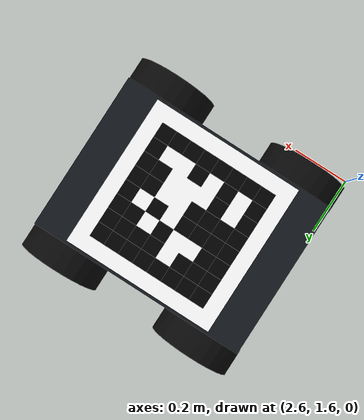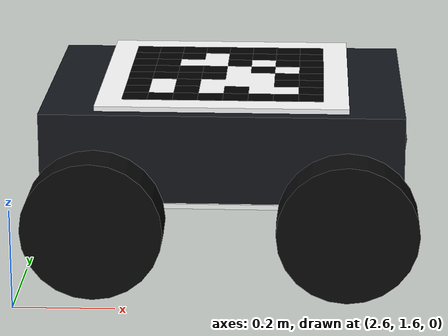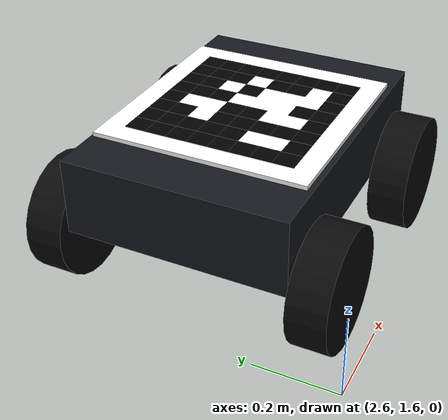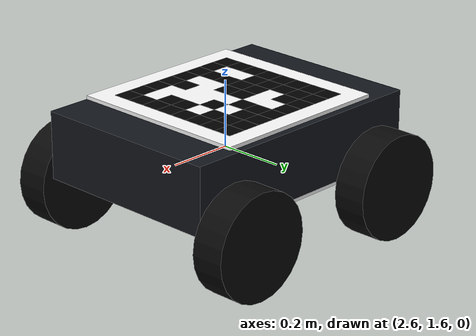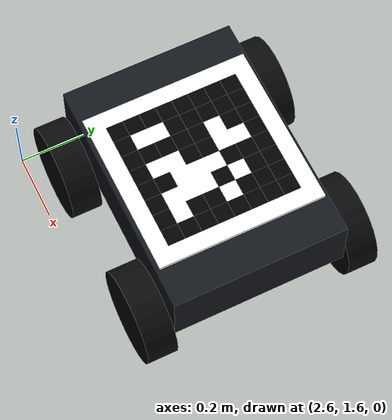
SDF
<sdf version="1.9">
 <world name="mocap_arena">
  <model name="tag_rover">
   <pose>3 2 0.14 0 0 0</pose>
   <link name="base_link">
    <inertial>
     <mass>8</mass>
     <inertia><ixx>0.22</ixx><iyy>0.22</iyy><izz>0.22</izz><ixy>0</ixy><ixz>0</ixz><iyz>0</iyz></inertia>
    </inertial>
    <collision name="body_collision">
     <pose>0 0 0.12 0 0 0</pose>
     <geometry><box><size>0.72 0.52 0.18</size></box></geometry>
    </collision>
    <visual name="body_visual">
     <pose>0 0 0.12 0 0 0</pose>
     <geometry><box><size>0.72 0.52 0.18</size></box></geometry>
     <material>
      <ambient>0.075 0.09 0.11 1</ambient>
      <diffuse>0.075 0.09 0.11 1</diffuse>
      <pbr><metal><metalness>0.2</metalness><roughness>0.7</roughness></metal></pbr>
     </material>
    </visual>
    <collision name="tag_board_collision">
     <pose>0 0 0.22 0 0 0</pose>
     <geometry><box><size>0.5 0.5 0.01</size></box></geometry>
    </collision>
    <visual name="tag_board_visual">
     <pose>0 0 0.22 0 0 0</pose>
     <geometry><box><size>0.5 0.5 0.01</size></box></geometry>
     <material>
      <ambient>1 1 1 1</ambient>
      <diffuse>1 1 1 1</diffuse>
      <pbr><metal><metalness>0.0</metalness><roughness>0.75</roughness></metal></pbr>
     </material>
    </visual>
    <collision name="bottom_tag_board_collision">
     <pose>0 0 0.02 0 0 0</pose>
     <geometry><box><size>0.5 0.5 0.01</size></box></geometry>
    </collision>
    <visual name="bottom_tag_board_visual">
     <pose>0 0 0.02 0 0 0</pose>
     <geometry><box><size>0.5 0.5 0.01</size></box></geometry>
     <material>
      <ambient>1 1 1 1</ambient>
      <diffuse>1 1 1 1</diffuse>
      <pbr><metal><metalness>0.0</metalness><roughness>0.75</roughness></metal></pbr>
     </material>
    </visual>
    <visual name="tag_0_1_1_visual">
     <pose>-0.17500000000000002 0.17500000000000002 0.2252 0 0 0</pose>
     <geometry><box><size>0.05 0.05 0.0004</size></box></geometry>
     <material>
      <ambient>0 0 0 1</ambient>
      <diffuse>0 0 0 1</diffuse>
      <pbr><metal><metalness>0.0</metalness><roughness>0.75</roughness></metal></pbr>
     </material>
    </visual>
    <visual name="tag_0_1_2_visual">
     <pose>-0.125 0.17500000000000002 0.2252 0 0 0</pose>
     <geometry><box><size>0.05 0.05 0.0004</size></box></geometry>
     <material>
      <ambient>0 0 0 1</ambient>
      <diffuse>0 0 0 1</diffuse>
      <pbr><metal><metalness>0.0</metalness><roughness>0.75</roughness></metal></pbr>
     </material>
    </visual>
    <visual name="tag_0_1_3_visual">
     <pose>-0.07500000000000001 0.17500000000000002 0.2252 0 0 0</pose>
     <geometry><box><size>0.05 0.05 0.0004</size></box></geometry>
     <material>
      <ambient>0 0 0 1</ambient>
      <diffuse>0 0 0 1</diffuse>
      <pbr><metal><metalness>0.0</metalness><roughness>0.75</roughness></metal></pbr>
     </material>
    </visual>
    <visual name="tag_0_1_4_visual">
     <pose>-0.025 0.17500000000000002 0.2252 0 0 0</pose>
     <geometry><box><size>0.05 0.05 0.0004</size></box></geometry>
     <material>
      <ambient>0 0 0 1</ambient>
      <diffuse>0 0 0 1</diffuse>
      <pbr><metal><metalness>0.0</metalness><roughness>0.75</roughness></metal></pbr>
     </material>
    </visual>
    <visual name="tag_0_1_5_visual">
     <pose>0.025 0.17500000000000002 0.2252 0 0 0</pose>
     <geometry><box><size>0.05 0.05 0.0004</size></box></geometry>
     <material>
      <ambient>0 0 0 1</ambient>
      <diffuse>0 0 0 1</diffuse>
      <pbr><metal><metalness>0.0</metalness><roughness>0.75</roughness></metal></pbr>
     </material>
    </visual>
    <visual name="tag_0_1_6_visual">
     <pose>0.07500000000000001 0.17500000000000002 0.2252 0 0 0</pose>
     <geometry><box><size>0.05 0.05 0.0004</size></box></geometry>
     <material>
      <ambient>0 0 0 1</ambient>
      <diffuse>0 0 0 1</diffuse>
      <pbr><metal><metalness>0.0</metalness><roughness>0.75</roughness></metal></pbr>
     </material>
    </visual>
    <visual name="tag_0_1_7_visual">
     <pose>0.125 0.17500000000000002 0.2252 0 0 0</pose>
     <geometry><box><size>0.05 0.05 0.0004</size></box></geometry>
     <material>
      <ambient>0 0 0 1</ambient>
      <diffuse>0 0 0 1</diffuse>
      <pbr><metal><metalness>0.0</metalness><roughness>0.75</roughness></metal></pbr>
     </material>
    </visual>
    <visual name="tag_0_1_8_visual">
     <pose>0.17500000000000002 0.17500000000000002 0.2252 0 0 0</pose>
     <geometry><box><size>0.05 0.05 0.0004</size></box></geometry>
     <material>
      <ambient>0 0 0 1</ambient>
      <diffuse>0 0 0 1</diffuse>
      <pbr><metal><metalness>0.0</metalness><roughness>0.75</roughness></metal></pbr>
     </material>
    </visual>
    <visual name="tag_0_2_1_visual">
     <pose>-0.17500000000000002 0.125 0.2252 0 0 0</pose>
     <geometry><box><size>0.05 0.05 0.0004</size></box></geometry>
     <material>
      <ambient>0 0 0 1</ambient>
      <diffuse>0 0 0 1</diffuse>
      <pbr><metal><metalness>0.0</metalness><roughness>0.75</roughness></metal></pbr>
     </material>
    </visual>
    <visual name="tag_0_2_2_visual">
     <pose>-0.125 0.125 0.2252 0 0 0</pose>
     <geometry><box><size>0.05 0.05 0.0004</size></box></geometry>
     <material>
      <ambient>0 0 0 1</ambient>
      <diffuse>0 0 0 1</diffuse>
      <pbr><metal><metalness>0.0</metalness><roughness>0.75</roughness></metal></pbr>
     </material>
    </visual>
    <visual name="tag_0_2_3_visual">
     <pose>-0.07500000000000001 0.125 0.2252 0 0 0</pose>
     <geometry><box><size>0.05 0.05 0.0004</size></box></geometry>
     <material>
      <ambient>0 0 0 1</ambient>
      <diffuse>0 0 0 1</diffuse>
      <pbr><metal><metalness>0.0</metalness><roughness>0.75</roughness></metal></pbr>
     </material>
    </visual>
    <visual name="tag_0_2_5_visual">
     <pose>0.025 0.125 0.2252 0 0 0</pose>
     <geometry><box><size>0.05 0.05 0.0004</size></box></geometry>
     <material>
      <ambient>0 0 0 1</ambient>
      <diffuse>0 0 0 1</diffuse>
      <pbr><metal><metalness>0.0</metalness><roughness>0.75</roughness></metal></pbr>
     </material>
    </visual>
    <visual name="tag_0_2_6_visual">
     <pose>0.07500000000000001 0.125 0.2252 0 0 0</pose>
     <geometry><box><size>0.05 0.05 0.0004</size></box></geometry>
     <material>
      <ambient>0 0 0 1</ambient>
      <diffuse>0 0 0 1</diffuse>
      <pbr><metal><metalness>0.0</metalness><roughness>0.75</roughness></metal></pbr>
     </material>
    </visual>
    <visual name="tag_0_2_7_visual">
     <pose>0.125 0.125 0.2252 0 0 0</pose>
     <geometry><box><size>0.05 0.05 0.0004</size></box></geometry>
     <material>
      <ambient>0 0 0 1</ambient>
      <diffuse>0 0 0 1</diffuse>
      <pbr><metal><metalness>0.0</metalness><roughness>0.75</roughness></metal></pbr>
     </material>
    </visual>
    <visual name="tag_0_2_8_visual">
     <pose>0.17500000000000002 0.125 0.2252 0 0 0</pose>
     <geometry><box><size>0.05 0.05 0.0004</size></box></geometry>
     <material>
      <ambient>0 0 0 1</ambient>
      <diffuse>0 0 0 1</diffuse>
      <pbr><metal><metalness>0.0</metalness><roughness>0.75</roughness></metal></pbr>
     </material>
    </visual>
    <visual name="tag_0_3_1_visual">
     <pose>-0.17500000000000002 0.07500000000000001 0.2252 0 0 0</pose>
     <geometry><box><size>0.05 0.05 0.0004</size></box></geometry>
     <material>
      <ambient>0 0 0 1</ambient>
      <diffuse>0 0 0 1</diffuse>
      <pbr><metal><metalness>0.0</metalness><roughness>0.75</roughness></metal></pbr>
     </material>
    </visual>
    <visual name="tag_0_3_2_visual">
     <pose>-0.125 0.07500000000000001 0.2252 0 0 0</pose>
     <geometry><box><size>0.05 0.05 0.0004</size></box></geometry>
     <material>
      <ambient>0 0 0 1</ambient>
      <diffuse>0 0 0 1</diffuse>
      <pbr><metal><metalness>0.0</metalness><roughness>0.75</roughness></metal></pbr>
     </material>
    </visual>
    <visual name="tag_0_3_5_visual">
     <pose>0.025 0.07500000000000001 0.2252 0 0 0</pose>
     <geometry><box><size>0.05 0.05 0.0004</size></box></geometry>
     <material>
      <ambient>0 0 0 1</ambient>
      <diffuse>0 0 0 1</diffuse>
      <pbr><metal><metalness>0.0</metalness><roughness>0.75</roughness></metal></pbr>
     </material>
    </visual>
    <visual name="tag_0_3_7_visual">
     <pose>0.125 0.07500000000000001 0.2252 0 0 0</pose>
     <geometry><box><size>0.05 0.05 0.0004</size></box></geometry>
     <material>
      <ambient>0 0 0 1</ambient>
      <diffuse>0 0 0 1</diffuse>
      <pbr><metal><metalness>0.0</metalness><roughness>0.75</roughness></metal></pbr>
     </material>
    </visual>
    <visual name="tag_0_3_8_visual">
     <pose>0.17500000000000002 0.07500000000000001 0.2252 0 0 0</pose>
     <geometry><box><size>0.05 0.05 0.0004</size></box></geometry>
     <material>
      <ambient>0 0 0 1</ambient>
      <diffuse>0 0 0 1</diffuse>
      <pbr><metal><metalness>0.0</metalness><roughness>0.75</roughness></metal></pbr>
     </material>
    </visual>
    <visual name="tag_0_4_1_visual">
     <pose>-0.17500000000000002 0.025 0.2252 0 0 0</pose>
     <geometry><box><size>0.05 0.05 0.0004</size></box></geometry>
     <material>
      <ambient>0 0 0 1</ambient>
      <diffuse>0 0 0 1</diffuse>
      <pbr><metal><metalness>0.0</metalness><roughness>0.75</roughness></metal></pbr>
     </material>
    </visual>
    <visual name="tag_0_4_2_visual">
     <pose>-0.125 0.025 0.2252 0 0 0</pose>
     <geometry><box><size>0.05 0.05 0.0004</size></box></geometry>
     <material>
      <ambient>0 0 0 1</ambient>
      <diffuse>0 0 0 1</diffuse>
      <pbr><metal><metalness>0.0</metalness><roughness>0.75</roughness></metal></pbr>
     </material>
    </visual>
    <visual name="tag_0_4_3_visual">
     <pose>-0.07500000000000001 0.025 0.2252 0 0 0</pose>
     <geometry><box><size>0.05 0.05 0.0004</size></box></geometry>
     <material>
      <ambient>0 0 0 1</ambient>
      <diffuse>0 0 0 1</diffuse>
      <pbr><metal><metalness>0.0</metalness><roughness>0.75</roughness></metal></pbr>
     </material>
    </visual>
    <visual name="tag_0_4_4_visual">
     <pose>-0.025 0.025 0.2252 0 0 0</pose>
     <geometry><box><size>0.05 0.05 0.0004</size></box></geometry>
     <material>
      <ambient>0 0 0 1</ambient>
      <diffuse>0 0 0 1</diffuse>
      <pbr><metal><metalness>0.0</metalness><roughness>0.75</roughness></metal></pbr>
     </material>
    </visual>
    <visual name="tag_0_4_6_visual">
     <pose>0.07500000000000001 0.025 0.2252 0 0 0</pose>
     <geometry><box><size>0.05 0.05 0.0004</size></box></geometry>
     <material>
      <ambient>0 0 0 1</ambient>
      <diffuse>0 0 0 1</diffuse>
      <pbr><metal><metalness>0.0</metalness><roughness>0.75</roughness></metal></pbr>
     </material>
    </visual>
    <visual name="tag_0_4_8_visual">
     <pose>0.17500000000000002 0.025 0.2252 0 0 0</pose>
     <geometry><box><size>0.05 0.05 0.0004</size></box></geometry>
     <material>
      <ambient>0 0 0 1</ambient>
      <diffuse>0 0 0 1</diffuse>
      <pbr><metal><metalness>0.0</metalness><roughness>0.75</roughness></metal></pbr>
     </material>
    </visual>
    <visual name="tag_0_5_1_visual">
     <pose>-0.17500000000000002 -0.025 0.2252 0 0 0</pose>
     <geometry><box><size>0.05 0.05 0.0004</size></box></geometry>
     <material>
      <ambient>0 0 0 1</ambient>
      <diffuse>0 0 0 1</diffuse>
      <pbr><metal><metalness>0.0</metalness><roughness>0.75</roughness></metal></pbr>
     </material>
    </visual>
    <visual name="tag_0_5_2_visual">
     <pose>-0.125 -0.025 0.2252 0 0 0</pose>
     <geometry><box><size>0.05 0.05 0.0004</size></box></geometry>
     <material>
      <ambient>0 0 0 1</ambient>
      <diffuse>0 0 0 1</diffuse>
      <pbr><metal><metalness>0.0</metalness><roughness>0.75</roughness></metal></pbr>
     </material>
    </visual>
    <visual name="tag_0_5_3_visual">
     <pose>-0.07500000000000001 -0.025 0.2252 0 0 0</pose>
     <geometry><box><size>0.05 0.05 0.0004</size></box></geometry>
     <material>
      <ambient>0 0 0 1</ambient>
      <diffuse>0 0 0 1</diffuse>
      <pbr><metal><metalness>0.0</metalness><roughness>0.75</roughness></metal></pbr>
     </material>
    </visual>
    <visual name="tag_0_5_4_visual">
     <pose>-0.025 -0.025 0.2252 0 0 0</pose>
     <geometry><box><size>0.05 0.05 0.0004</size></box></geometry>
     <material>
      <ambient>0 0 0 1</ambient>
      <diffuse>0 0 0 1</diffuse>
      <pbr><metal><metalness>0.0</metalness><roughness>0.75</roughness></metal></pbr>
     </material>
    </visual>
    <visual name="tag_0_5_7_visual">
     <pose>0.125 -0.025 0.2252 0 0 0</pose>
     <geometry><box><size>0.05 0.05 0.0004</size></box></geometry>
     <material>
      <ambient>0 0 0 1</ambient>
      <diffuse>0 0 0 1</diffuse>
      <pbr><metal><metalness>0.0</metalness><roughness>0.75</roughness></metal></pbr>
     </material>
    </visual>
    <visual name="tag_0_5_8_visual">
     <pose>0.17500000000000002 -0.025 0.2252 0 0 0</pose>
     <geometry><box><size>0.05 0.05 0.0004</size></box></geometry>
     <material>
      <ambient>0 0 0 1</ambient>
      <diffuse>0 0 0 1</diffuse>
      <pbr><metal><metalness>0.0</metalness><roughness>0.75</roughness></metal></pbr>
     </material>
    </visual>
    <visual name="tag_0_6_1_visual">
     <pose>-0.17500000000000002 -0.07500000000000001 0.2252 0 0 0</pose>
     <geometry><box><size>0.05 0.05 0.0004</size></box></geometry>
     <material>
      <ambient>0 0 0 1</ambient>
      <diffuse>0 0 0 1</diffuse>
      <pbr><metal><metalness>0.0</metalness><roughness>0.75</roughness></metal></pbr>
     </material>
    </visual>
    <visual name="tag_0_6_3_visual">
     <pose>-0.07500000000000001 -0.07500000000000001 0.2252 0 0 0</pose>
     <geometry><box><size>0.05 0.05 0.0004</size></box></geometry>
     <material>
      <ambient>0 0 0 1</ambient>
      <diffuse>0 0 0 1</diffuse>
      <pbr><metal><metalness>0.0</metalness><roughness>0.75</roughness></metal></pbr>
     </material>
    </visual>
    <visual name="tag_0_6_7_visual">
     <pose>0.125 -0.07500000000000001 0.2252 0 0 0</pose>
     <geometry><box><size>0.05 0.05 0.0004</size></box></geometry>
     <material>
      <ambient>0 0 0 1</ambient>
      <diffuse>0 0 0 1</diffuse>
      <pbr><metal><metalness>0.0</metalness><roughness>0.75</roughness></metal></pbr>
     </material>
    </visual>
    <visual name="tag_0_6_8_visual">
     <pose>0.17500000000000002 -0.07500000000000001 0.2252 0 0 0</pose>
     <geometry><box><size>0.05 0.05 0.0004</size></box></geometry>
     <material>
      <ambient>0 0 0 1</ambient>
      <diffuse>0 0 0 1</diffuse>
      <pbr><metal><metalness>0.0</metalness><roughness>0.75</roughness></metal></pbr>
     </material>
    </visual>
    <visual name="tag_0_7_1_visual">
     <pose>-0.17500000000000002 -0.125 0.2252 0 0 0</pose>
     <geometry><box><size>0.05 0.05 0.0004</size></box></geometry>
     <material>
      <ambient>0 0 0 1</ambient>
      <diffuse>0 0 0 1</diffuse>
      <pbr><metal><metalness>0.0</metalness><roughness>0.75</roughness></metal></pbr>
     </material>
    </visual>
    <visual name="tag_0_7_3_visual">
     <pose>-0.07500000000000001 -0.125 0.2252 0 0 0</pose>
     <geometry><box><size>0.05 0.05 0.0004</size></box></geometry>
     <material>
      <ambient>0 0 0 1</ambient>
      <diffuse>0 0 0 1</diffuse>
      <pbr><metal><metalness>0.0</metalness><roughness>0.75</roughness></metal></pbr>
     </material>
    </visual>
    <visual name="tag_0_7_5_visual">
     <pose>0.025 -0.125 0.2252 0 0 0</pose>
     <geometry><box><size>0.05 0.05 0.0004</size></box></geometry>
     <material>
      <ambient>0 0 0 1</ambient>
      <diffuse>0 0 0 1</diffuse>
      <pbr><metal><metalness>0.0</metalness><roughness>0.75</roughness></metal></pbr>
     </material>
    </visual>
    <visual name="tag_0_7_8_visual">
     <pose>0.17500000000000002 -0.125 0.2252 0 0 0</pose>
     <geometry><box><size>0.05 0.05 0.0004</size></box></geometry>
     <material>
      <ambient>0 0 0 1</ambient>
      <diffuse>0 0 0 1</diffuse>
      <pbr><metal><metalness>0.0</metalness><roughness>0.75</roughness></metal></pbr>
     </material>
    </visual>
    <visual name="tag_0_8_1_visual">
     <pose>-0.17500000000000002 -0.17500000000000002 0.2252 0 0 0</pose>
     <geometry><box><size>0.05 0.05 0.0004</size></box></geometry>
     <material>
      <ambient>0 0 0 1</ambient>
      <diffuse>0 0 0 1</diffuse>
      <pbr><metal><metalness>0.0</metalness><roughness>0.75</roughness></metal></pbr>
     </material>
    </visual>
    <visual name="tag_0_8_2_visual">
     <pose>-0.125 -0.17500000000000002 0.2252 0 0 0</pose>
     <geometry><box><size>0.05 0.05 0.0004</size></box></geometry>
     <material>
      <ambient>0 0 0 1</ambient>
      <diffuse>0 0 0 1</diffuse>
      <pbr><metal><metalness>0.0</metalness><roughness>0.75</roughness></metal></pbr>
     </material>
    </visual>
    <visual name="tag_0_8_3_visual">
     <pose>-0.07500000000000001 -0.17500000000000002 0.2252 0 0 0</pose>
     <geometry><box><size>0.05 0.05 0.0004</size></box></geometry>
     <material>
      <ambient>0 0 0 1</ambient>
      <diffuse>0 0 0 1</diffuse>
      <pbr><metal><metalness>0.0</metalness><roughness>0.75</roughness></metal></pbr>
     </material>
    </visual>
    <visual name="tag_0_8_4_visual">
     <pose>-0.025 -0.17500000000000002 0.2252 0 0 0</pose>
     <geometry><box><size>0.05 0.05 0.0004</size></box></geometry>
     <material>
      <ambient>0 0 0 1</ambient>
      <diffuse>0 0 0 1</diffuse>
      <pbr><metal><metalness>0.0</metalness><roughness>0.75</roughness></metal></pbr>
     </material>
    </visual>
    <visual name="tag_0_8_5_visual">
     <pose>0.025 -0.17500000000000002 0.2252 0 0 0</pose>
     <geometry><box><size>0.05 0.05 0.0004</size></box></geometry>
     <material>
      <ambient>0 0 0 1</ambient>
      <diffuse>0 0 0 1</diffuse>
      <pbr><metal><metalness>0.0</metalness><roughness>0.75</roughness></metal></pbr>
     </material>
    </visual>
    <visual name="tag_0_8_6_visual">
     <pose>0.07500000000000001 -0.17500000000000002 0.2252 0 0 0</pose>
     <geometry><box><size>0.05 0.05 0.0004</size></box></geometry>
     <material>
      <ambient>0 0 0 1</ambient>
      <diffuse>0 0 0 1</diffuse>
      <pbr><metal><metalness>0.0</metalness><roughness>0.75</roughness></metal></pbr>
     </material>
    </visual>
    <visual name="tag_0_8_7_visual">
     <pose>0.125 -0.17500000000000002 0.2252 0 0 0</pose>
     <geometry><box><size>0.05 0.05 0.0004</size></box></geometry>
     <material>
      <ambient>0 0 0 1</ambient>
      <diffuse>0 0 0 1</diffuse>
      <pbr><metal><metalness>0.0</metalness><roughness>0.75</roughness></metal></pbr>
     </material>
    </visual>
    <visual name="tag_0_8_8_visual">
     <pose>0.17500000000000002 -0.17500000000000002 0.2252 0 0 0</pose>
     <geometry><box><size>0.05 0.05 0.0004</size></box></geometry>
     <material>
      <ambient>0 0 0 1</ambient>
      <diffuse>0 0 0 1</diffuse>
      <pbr><metal><metalness>0.0</metalness><roughness>0.75</roughness></metal></pbr>
     </material>
    </visual>
    <visual name="tag_1_1_1_visual">
     <pose>-0.17500000000000002 -0.17500000000000002 0.0148 0 0 0</pose>
     <geometry><box><size>0.05 0.05 0.0004</size></box></geometry>
     <material>
      <ambient>0 0 0 1</ambient>
      <diffuse>0 0 0 1</diffuse>
      <pbr><metal><metalness>0.0</metalness><roughness>0.75</roughness></metal></pbr>
     </material>
    </visual>
    <visual name="tag_1_1_2_visual">
     <pose>-0.125 -0.17500000000000002 0.0148 0 0 0</pose>
     <geometry><box><size>0.05 0.05 0.0004</size></box></geometry>
     <material>
      <ambient>0 0 0 1</ambient>
      <diffuse>0 0 0 1</diffuse>
      <pbr><metal><metalness>0.0</metalness><roughness>0.75</roughness></metal></pbr>
     </material>
    </visual>
    <visual name="tag_1_1_3_visual">
     <pose>-0.07500000000000001 -0.17500000000000002 0.0148 0 0 0</pose>
     <geometry><box><size>0.05 0.05 0.0004</size></box></geometry>
     <material>
      <ambient>0 0 0 1</ambient>
      <diffuse>0 0 0 1</diffuse>
      <pbr><metal><metalness>0.0</metalness><roughness>0.75</roughness></metal></pbr>
     </material>
    </visual>
    <visual name="tag_1_1_4_visual">
     <pose>-0.025 -0.17500000000000002 0.0148 0 0 0</pose>
     <geometry><box><size>0.05 0.05 0.0004</size></box></geometry>
     <material>
      <ambient>0 0 0 1</ambient>
      <diffuse>0 0 0 1</diffuse>
      <pbr><metal><metalness>0.0</metalness><roughness>0.75</roughness></metal></pbr>
     </material>
    </visual>
    <visual name="tag_1_1_5_visual">
     <pose>0.025 -0.17500000000000002 0.0148 0 0 0</pose>
     <geometry><box><size>0.05 0.05 0.0004</size></box></geometry>
     <material>
      <ambient>0 0 0 1</ambient>
      <diffuse>0 0 0 1</diffuse>
      <pbr><metal><metalness>0.0</metalness><roughness>0.75</roughness></metal></pbr>
     </material>
    </visual>
    <visual name="tag_1_1_6_visual">
     <pose>0.07500000000000001 -0.17500000000000002 0.0148 0 0 0</pose>
     <geometry><box><size>0.05 0.05 0.0004</size></box></geometry>
     <material>
      <ambient>0 0 0 1</ambient>
      <diffuse>0 0 0 1</diffuse>
      <pbr><metal><metalness>0.0</metalness><roughness>0.75</roughness></metal></pbr>
     </material>
    </visual>
    <visual name="tag_1_1_7_visual">
     <pose>0.125 -0.17500000000000002 0.0148 0 0 0</pose>
     <geometry><box><size>0.05 0.05 0.0004</size></box></geometry>
     <material>
      <ambient>0 0 0 1</ambient>
      <diffuse>0 0 0 1</diffuse>
      <pbr><metal><metalness>0.0</metalness><roughness>0.75</roughness></metal></pbr>
     </material>
    </visual>
    <visual name="tag_1_1_8_visual">
     <pose>0.17500000000000002 -0.17500000000000002 0.0148 0 0 0</pose>
     <geometry><box><size>0.05 0.05 0.0004</size></box></geometry>
     <material>
      <ambient>0 0 0 1</ambient>
      <diffuse>0 0 0 1</diffuse>
      <pbr><metal><metalness>0.0</metalness><roughness>0.75</roughness></metal></pbr>
     </material>
    </visual>
    <visual name="tag_1_2_1_visual">
     <pose>-0.17500000000000002 -0.125 0.0148 0 0 0</pose>
     <geometry><box><size>0.05 0.05 0.0004</size></box></geometry>
     <material>
      <ambient>0 0 0 1</ambient>
      <diffuse>0 0 0 1</diffuse>
      <pbr><metal><metalness>0.0</metalness><roughness>0.75</roughness></metal></pbr>
     </material>
    </visual>
    <visual name="tag_1_2_3_visual">
     <pose>-0.07500000000000001 -0.125 0.0148 0 0 0</pose>
     <geometry><box><size>0.05 0.05 0.0004</size></box></geometry>
     <material>
      <ambient>0 0 0 1</ambient>
      <diffuse>0 0 0 1</diffuse>
      <pbr><metal><metalness>0.0</metalness><roughness>0.75</roughness></metal></pbr>
     </material>
    </visual>
    <visual name="tag_1_2_4_visual">
     <pose>-0.025 -0.125 0.0148 0 0 0</pose>
     <geometry><box><size>0.05 0.05 0.0004</size></box></geometry>
     <material>
      <ambient>0 0 0 1</ambient>
      <diffuse>0 0 0 1</diffuse>
      <pbr><metal><metalness>0.0</metalness><roughness>0.75</roughness></metal></pbr>
     </material>
    </visual>
    <visual name="tag_1_2_6_visual">
     <pose>0.07500000000000001 -0.125 0.0148 0 0 0</pose>
     <geometry><box><size>0.05 0.05 0.0004</size></box></geometry>
     <material>
      <ambient>0 0 0 1</ambient>
      <diffuse>0 0 0 1</diffuse>
      <pbr><metal><metalness>0.0</metalness><roughness>0.75</roughness></metal></pbr>
     </material>
    </visual>
    <visual name="tag_1_2_7_visual">
     <pose>0.125 -0.125 0.0148 0 0 0</pose>
     <geometry><box><size>0.05 0.05 0.0004</size></box></geometry>
     <material>
      <ambient>0 0 0 1</ambient>
      <diffuse>0 0 0 1</diffuse>
      <pbr><metal><metalness>0.0</metalness><roughness>0.75</roughness></metal></pbr>
     </material>
    </visual>
    <visual name="tag_1_2_8_visual">
     <pose>0.17500000000000002 -0.125 0.0148 0 0 0</pose>
     <geometry><box><size>0.05 0.05 0.0004</size></box></geometry>
     <material>
      <ambient>0 0 0 1</ambient>
      <diffuse>0 0 0 1</diffuse>
      <pbr><metal><metalness>0.0</metalness><roughness>0.75</roughness></metal></pbr>
     </material>
    </visual>
    <visual name="tag_1_3_1_visual">
     <pose>-0.17500000000000002 -0.07500000000000001 0.0148 0 0 0</pose>
     <geometry><box><size>0.05 0.05 0.0004</size></box></geometry>
     <material>
      <ambient>0 0 0 1</ambient>
      <diffuse>0 0 0 1</diffuse>
      <pbr><metal><metalness>0.0</metalness><roughness>0.75</roughness></metal></pbr>
     </material>
    </visual>
    <visual name="tag_1_3_3_visual">
     <pose>-0.07500000000000001 -0.07500000000000001 0.0148 0 0 0</pose>
     <geometry><box><size>0.05 0.05 0.0004</size></box></geometry>
     <material>
      <ambient>0 0 0 1</ambient>
      <diffuse>0 0 0 1</diffuse>
      <pbr><metal><metalness>0.0</metalness><roughness>0.75</roughness></metal></pbr>
     </material>
    </visual>
    <visual name="tag_1_3_6_visual">
     <pose>0.07500000000000001 -0.07500000000000001 0.0148 0 0 0</pose>
     <geometry><box><size>0.05 0.05 0.0004</size></box></geometry>
     <material>
      <ambient>0 0 0 1</ambient>
      <diffuse>0 0 0 1</diffuse>
      <pbr><metal><metalness>0.0</metalness><roughness>0.75</roughness></metal></pbr>
     </material>
    </visual>
    <visual name="tag_1_3_8_visual">
     <pose>0.17500000000000002 -0.07500000000000001 0.0148 0 0 0</pose>
     <geometry><box><size>0.05 0.05 0.0004</size></box></geometry>
     <material>
      <ambient>0 0 0 1</ambient>
      <diffuse>0 0 0 1</diffuse>
      <pbr><metal><metalness>0.0</metalness><roughness>0.75</roughness></metal></pbr>
     </material>
    </visual>
    <visual name="tag_1_4_1_visual">
     <pose>-0.17500000000000002 -0.025 0.0148 0 0 0</pose>
     <geometry><box><size>0.05 0.05 0.0004</size></box></geometry>
     <material>
      <ambient>0 0 0 1</ambient>
      <diffuse>0 0 0 1</diffuse>
      <pbr><metal><metalness>0.0</metalness><roughness>0.75</roughness></metal></pbr>
     </material>
    </visual>
    <visual name="tag_1_4_2_visual">
     <pose>-0.125 -0.025 0.0148 0 0 0</pose>
     <geometry><box><size>0.05 0.05 0.0004</size></box></geometry>
     <material>
      <ambient>0 0 0 1</ambient>
      <diffuse>0 0 0 1</diffuse>
      <pbr><metal><metalness>0.0</metalness><roughness>0.75</roughness></metal></pbr>
     </material>
    </visual>
    <visual name="tag_1_4_3_visual">
     <pose>-0.07500000000000001 -0.025 0.0148 0 0 0</pose>
     <geometry><box><size>0.05 0.05 0.0004</size></box></geometry>
     <material>
      <ambient>0 0 0 1</ambient>
      <diffuse>0 0 0 1</diffuse>
      <pbr><metal><metalness>0.0</metalness><roughness>0.75</roughness></metal></pbr>
     </material>
    </visual>
    <visual name="tag_1_4_4_visual">
     <pose>-0.025 -0.025 0.0148 0 0 0</pose>
     <geometry><box><size>0.05 0.05 0.0004</size></box></geometry>
     <material>
      <ambient>0 0 0 1</ambient>
      <diffuse>0 0 0 1</diffuse>
      <pbr><metal><metalness>0.0</metalness><roughness>0.75</roughness></metal></pbr>
     </material>
    </visual>
    <visual name="tag_1_4_7_visual">
     <pose>0.125 -0.025 0.0148 0 0 0</pose>
     <geometry><box><size>0.05 0.05 0.0004</size></box></geometry>
     <material>
      <ambient>0 0 0 1</ambient>
      <diffuse>0 0 0 1</diffuse>
      <pbr><metal><metalness>0.0</metalness><roughness>0.75</roughness></metal></pbr>
     </material>
    </visual>
    <visual name="tag_1_4_8_visual">
     <pose>0.17500000000000002 -0.025 0.0148 0 0 0</pose>
     <geometry><box><size>0.05 0.05 0.0004</size></box></geometry>
     <material>
      <ambient>0 0 0 1</ambient>
      <diffuse>0 0 0 1</diffuse>
      <pbr><metal><metalness>0.0</metalness><roughness>0.75</roughness></metal></pbr>
     </material>
    </visual>
    <visual name="tag_1_5_1_visual">
     <pose>-0.17500000000000002 0.025 0.0148 0 0 0</pose>
     <geometry><box><size>0.05 0.05 0.0004</size></box></geometry>
     <material>
      <ambient>0 0 0 1</ambient>
      <diffuse>0 0 0 1</diffuse>
      <pbr><metal><metalness>0.0</metalness><roughness>0.75</roughness></metal></pbr>
     </material>
    </visual>
    <visual name="tag_1_5_2_visual">
     <pose>-0.125 0.025 0.0148 0 0 0</pose>
     <geometry><box><size>0.05 0.05 0.0004</size></box></geometry>
     <material>
      <ambient>0 0 0 1</ambient>
      <diffuse>0 0 0 1</diffuse>
      <pbr><metal><metalness>0.0</metalness><roughness>0.75</roughness></metal></pbr>
     </material>
    </visual>
    <visual name="tag_1_5_3_visual">
     <pose>-0.07500000000000001 0.025 0.0148 0 0 0</pose>
     <geometry><box><size>0.05 0.05 0.0004</size></box></geometry>
     <material>
      <ambient>0 0 0 1</ambient>
      <diffuse>0 0 0 1</diffuse>
      <pbr><metal><metalness>0.0</metalness><roughness>0.75</roughness></metal></pbr>
     </material>
    </visual>
    <visual name="tag_1_5_8_visual">
     <pose>0.17500000000000002 0.025 0.0148 0 0 0</pose>
     <geometry><box><size>0.05 0.05 0.0004</size></box></geometry>
     <material>
      <ambient>0 0 0 1</ambient>
      <diffuse>0 0 0 1</diffuse>
      <pbr><metal><metalness>0.0</metalness><roughness>0.75</roughness></metal></pbr>
     </material>
    </visual>
    <visual name="tag_1_6_1_visual">
     <pose>-0.17500000000000002 0.07500000000000001 0.0148 0 0 0</pose>
     <geometry><box><size>0.05 0.05 0.0004</size></box></geometry>
     <material>
      <ambient>0 0 0 1</ambient>
      <diffuse>0 0 0 1</diffuse>
      <pbr><metal><metalness>0.0</metalness><roughness>0.75</roughness></metal></pbr>
     </material>
    </visual>
    <visual name="tag_1_6_5_visual">
     <pose>0.025 0.07500000000000001 0.0148 0 0 0</pose>
     <geometry><box><size>0.05 0.05 0.0004</size></box></geometry>
     <material>
      <ambient>0 0 0 1</ambient>
      <diffuse>0 0 0 1</diffuse>
      <pbr><metal><metalness>0.0</metalness><roughness>0.75</roughness></metal></pbr>
     </material>
    </visual>
    <visual name="tag_1_6_7_visual">
     <pose>0.125 0.07500000000000001 0.0148 0 0 0</pose>
     <geometry><box><size>0.05 0.05 0.0004</size></box></geometry>
     <material>
      <ambient>0 0 0 1</ambient>
      <diffuse>0 0 0 1</diffuse>
      <pbr><metal><metalness>0.0</metalness><roughness>0.75</roughness></metal></pbr>
     </material>
    </visual>
    <visual name="tag_1_6_8_visual">
     <pose>0.17500000000000002 0.07500000000000001 0.0148 0 0 0</pose>
     <geometry><box><size>0.05 0.05 0.0004</size></box></geometry>
     <material>
      <ambient>0 0 0 1</ambient>
      <diffuse>0 0 0 1</diffuse>
      <pbr><metal><metalness>0.0</metalness><roughness>0.75</roughness></metal></pbr>
     </material>
    </visual>
    <visual name="tag_1_7_1_visual">
     <pose>-0.17500000000000002 0.125 0.0148 0 0 0</pose>
     <geometry><box><size>0.05 0.05 0.0004</size></box></geometry>
     <material>
      <ambient>0 0 0 1</ambient>
      <diffuse>0 0 0 1</diffuse>
      <pbr><metal><metalness>0.0</metalness><roughness>0.75</roughness></metal></pbr>
     </material>
    </visual>
    <visual name="tag_1_7_2_visual">
     <pose>-0.125 0.125 0.0148 0 0 0</pose>
     <geometry><box><size>0.05 0.05 0.0004</size></box></geometry>
     <material>
      <ambient>0 0 0 1</ambient>
      <diffuse>0 0 0 1</diffuse>
      <pbr><metal><metalness>0.0</metalness><roughness>0.75</roughness></metal></pbr>
     </material>
    </visual>
    <visual name="tag_1_7_5_visual">
     <pose>0.025 0.125 0.0148 0 0 0</pose>
     <geometry><box><size>0.05 0.05 0.0004</size></box></geometry>
     <material>
      <ambient>0 0 0 1</ambient>
      <diffuse>0 0 0 1</diffuse>
      <pbr><metal><metalness>0.0</metalness><roughness>0.75</roughness></metal></pbr>
     </material>
    </visual>
    <visual name="tag_1_7_8_visual">
     <pose>0.17500000000000002 0.125 0.0148 0 0 0</pose>
     <geometry><box><size>0.05 0.05 0.0004</size></box></geometry>
     <material>
      <ambient>0 0 0 1</ambient>
      <diffuse>0 0 0 1</diffuse>
      <pbr><metal><metalness>0.0</metalness><roughness>0.75</roughness></metal></pbr>
     </material>
    </visual>
    <visual name="tag_1_8_1_visual">
     <pose>-0.17500000000000002 0.17500000000000002 0.0148 0 0 0</pose>
     <geometry><box><size>0.05 0.05 0.0004</size></box></geometry>
     <material>
      <ambient>0 0 0 1</ambient>
      <diffuse>0 0 0 1</diffuse>
      <pbr><metal><metalness>0.0</metalness><roughness>0.75</roughness></metal></pbr>
     </material>
    </visual>
    <visual name="tag_1_8_2_visual">
     <pose>-0.125 0.17500000000000002 0.0148 0 0 0</pose>
     <geometry><box><size>0.05 0.05 0.0004</size></box></geometry>
     <material>
      <ambient>0 0 0 1</ambient>
      <diffuse>0 0 0 1</diffuse>
      <pbr><metal><metalness>0.0</metalness><roughness>0.75</roughness></metal></pbr>
     </material>
    </visual>
    <visual name="tag_1_8_3_visual">
     <pose>-0.07500000000000001 0.17500000000000002 0.0148 0 0 0</pose>
     <geometry><box><size>0.05 0.05 0.0004</size></box></geometry>
     <material>
      <ambient>0 0 0 1</ambient>
      <diffuse>0 0 0 1</diffuse>
      <pbr><metal><metalness>0.0</metalness><roughness>0.75</roughness></metal></pbr>
     </material>
    </visual>
    <visual name="tag_1_8_4_visual">
     <pose>-0.025 0.17500000000000002 0.0148 0 0 0</pose>
     <geometry><box><size>0.05 0.05 0.0004</size></box></geometry>
     <material>
      <ambient>0 0 0 1</ambient>
      <diffuse>0 0 0 1</diffuse>
      <pbr><metal><metalness>0.0</metalness><roughness>0.75</roughness></metal></pbr>
     </material>
    </visual>
    <visual name="tag_1_8_5_visual">
     <pose>0.025 0.17500000000000002 0.0148 0 0 0</pose>
     <geometry><box><size>0.05 0.05 0.0004</size></box></geometry>
     <material>
      <ambient>0 0 0 1</ambient>
      <diffuse>0 0 0 1</diffuse>
      <pbr><metal><metalness>0.0</metalness><roughness>0.75</roughness></metal></pbr>
     </material>
    </visual>
    <visual name="tag_1_8_6_visual">
     <pose>0.07500000000000001 0.17500000000000002 0.0148 0 0 0</pose>
     <geometry><box><size>0.05 0.05 0.0004</size></box></geometry>
     <material>
      <ambient>0 0 0 1</ambient>
      <diffuse>0 0 0 1</diffuse>
      <pbr><metal><metalness>0.0</metalness><roughness>0.75</roughness></metal></pbr>
     </material>
    </visual>
    <visual name="tag_1_8_7_visual">
     <pose>0.125 0.17500000000000002 0.0148 0 0 0</pose>
     <geometry><box><size>0.05 0.05 0.0004</size></box></geometry>
     <material>
      <ambient>0 0 0 1</ambient>
      <diffuse>0 0 0 1</diffuse>
      <pbr><metal><metalness>0.0</metalness><roughness>0.75</roughness></metal></pbr>
     </material>
    </visual>
    <visual name="tag_1_8_8_visual">
     <pose>0.17500000000000002 0.17500000000000002 0.0148 0 0 0</pose>
     <geometry><box><size>0.05 0.05 0.0004</size></box></geometry>
     <material>
      <ambient>0 0 0 1</ambient>
      <diffuse>0 0 0 1</diffuse>
      <pbr><metal><metalness>0.0</metalness><roughness>0.75</roughness></metal></pbr>
     </material>
    </visual>
   </link>
   <link name="left_front">
    <pose>0.25 0.31 0 -1.5707963267948966 0 0</pose>
    <inertial>
     <mass>0.5</mass>
     <inertia><ixx>0.004</ixx><iyy>0.004</iyy><izz>0.004</izz><ixy>0</ixy><ixz>0</ixz><iyz>0</iyz></inertia>
    </inertial>
    <collision name="left_front_collision">
     <geometry><cylinder><radius>0.14</radius><length>0.09</length></cylinder></geometry>
    </collision>
    <visual name="left_front_visual">
     <geometry><cylinder><radius>0.14</radius><length>0.09</length></cylinder></geometry>
     <material><ambient>0.035 0.035 0.035 1</ambient><diffuse>0.035 0.035 0.035 1</diffuse></material>
    </visual>
   </link>
   <joint name="left_front_joint" type="revolute">
    <parent>base_link</parent>
    <child>left_front</child>
    <axis><xyz>0 0 1</xyz></axis>
   </joint>
   <link name="left_rear">
    <pose>-0.25 0.31 0 -1.5707963267948966 0 0</pose>
    <inertial>
     <mass>0.5</mass>
     <inertia><ixx>0.004</ixx><iyy>0.004</iyy><izz>0.004</izz><ixy>0</ixy><ixz>0</ixz><iyz>0</iyz></inertia>
    </inertial>
    <collision name="left_rear_collision">
     <geometry><cylinder><radius>0.14</radius><length>0.09</length></cylinder></geometry>
    </collision>
    <visual name="left_rear_visual">
     <geometry><cylinder><radius>0.14</radius><length>0.09</length></cylinder></geometry>
     <material><ambient>0.035 0.035 0.035 1</ambient><diffuse>0.035 0.035 0.035 1</diffuse></material>
    </visual>
   </link>
   <joint name="left_rear_joint" type="revolute">
    <parent>base_link</parent>
    <child>left_rear</child>
    <axis><xyz>0 0 1</xyz></axis>
   </joint>
   <link name="right_front">
    <pose>0.25 -0.31 0 -1.5707963267948966 0 0</pose>
    <inertial>
     <mass>0.5</mass>
     <inertia><ixx>0.004</ixx><iyy>0.004</iyy><izz>0.004</izz><ixy>0</ixy><ixz>0</ixz><iyz>0</iyz></inertia>
    </inertial>
    <collision name="right_front_collision">
     <geometry><cylinder><radius>0.14</radius><length>0.09</length></cylinder></geometry>
    </collision>
    <visual name="right_front_visual">
     <geometry><cylinder><radius>0.14</radius><length>0.09</length></cylinder></geometry>
     <material><ambient>0.035 0.035 0.035 1</ambient><diffuse>0.035 0.035 0.035 1</diffuse></material>
    </visual>
   </link>
   <joint name="right_front_joint" type="revolute">
    <parent>base_link</parent>
    <child>right_front</child>
    <axis><xyz>0 0 1</xyz></axis>
   </joint>
   <link name="right_rear">
    <pose>-0.25 -0.31 0 -1.5707963267948966 0 0</pose>
    <inertial>
     <mass>0.5</mass>
     <inertia><ixx>0.004</ixx><iyy>0.004</iyy><izz>0.004</izz><ixy>0</ixy><ixz>0</ixz><iyz>0</iyz></inertia>
    </inertial>
    <collision name="right_rear_collision">
     <geometry><cylinder><radius>0.14</radius><length>0.09</length></cylinder></geometry>
    </collision>
    <visual name="right_rear_visual">
     <geometry><cylinder><radius>0.14</radius><length>0.09</length></cylinder></geometry>
     <material><ambient>0.035 0.035 0.035 1</ambient><diffuse>0.035 0.035 0.035 1</diffuse></material>
    </visual>
   </link>
   <joint name="right_rear_joint" type="revolute">
    <parent>base_link</parent>
    <child>right_rear</child>
    <axis><xyz>0 0 1</xyz></axis>
   </joint>
   <plugin filename="gz-sim-diff-drive-system" name="gz::sim::systems::DiffDrive">
    <left_joint>left_front_joint</left_joint>
    <left_joint>left_rear_joint</left_joint>
    <right_joint>right_front_joint</right_joint>
    <right_joint>right_rear_joint</right_joint>
    <wheel_separation>0.62</wheel_separation>
    <wheel_radius>0.14</wheel_radius>
    <topic>/model/tag_rover/cmd_vel</topic>
    <odom_topic>/model/tag_rover/odometry</odom_topic>
    <max_linear_velocity>12.0</max_linear_velocity>
    <min_linear_velocity>-12.0</min_linear_velocity>
    <max_angular_velocity>3.0</max_angular_velocity>
    <min_angular_velocity>-3.0</min_angular_velocity>
   </plugin>
   <plugin filename="gz-sim-pose-publisher-system" name="gz::sim::systems::PosePublisher">
    <publish_link_pose>false</publish_link_pose>
    <publish_sensor_pose>false</publish_sensor_pose>
    <publish_collision_pose>false</publish_collision_pose>
    <publish_visual_pose>false</publish_visual_pose>
    <publish_model_pose>true</publish_model_pose>
    <use_pose_vector_msg>true</use_pose_vector_msg>
    <update_frequency>200.0</update_frequency>
   </plugin>
  </model>
 </world>
</sdf>
